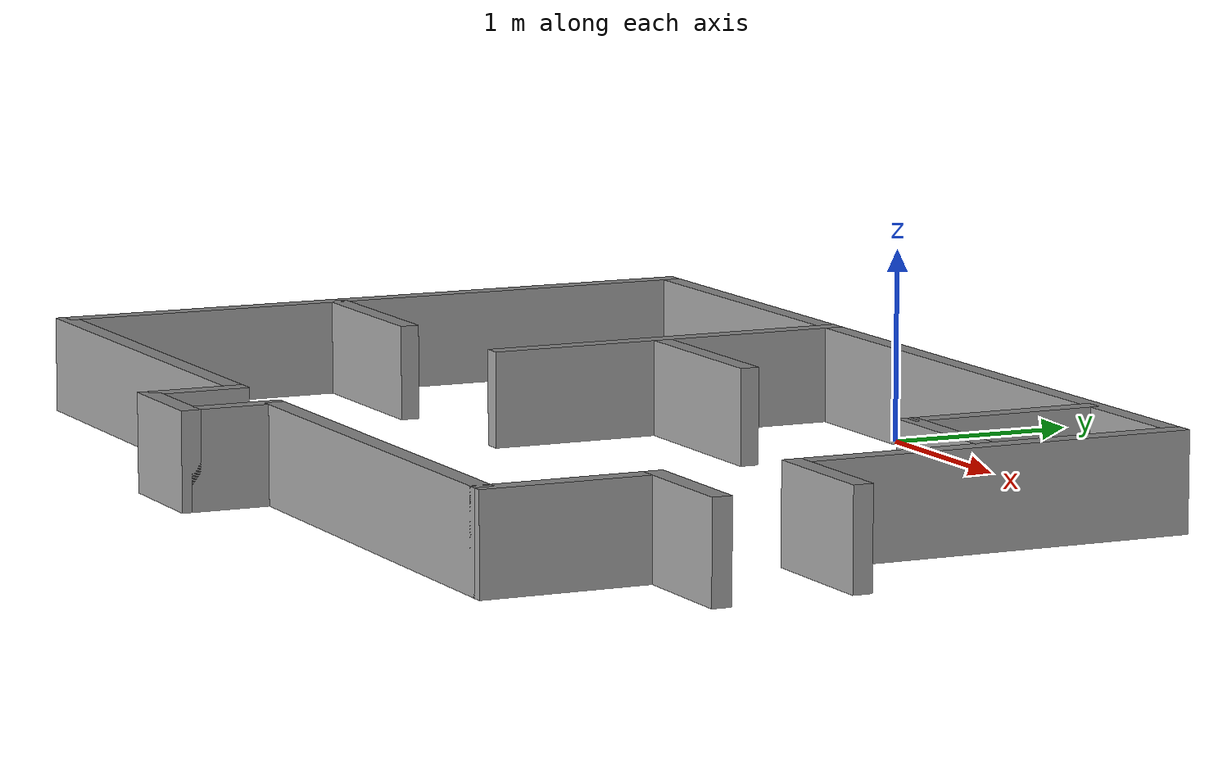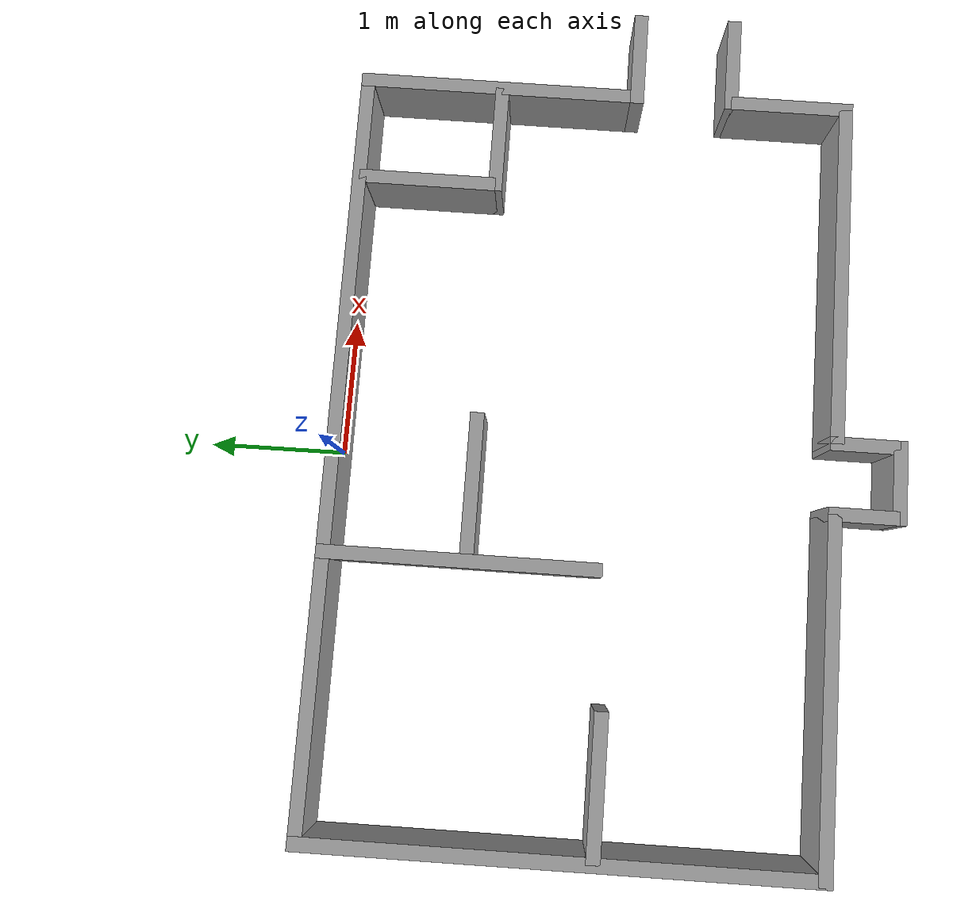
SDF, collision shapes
<?xml version='1.0'?>
<sdf version='1.7'>
  <model name='enclosed_maze'>
    <pose>0 0 0 0 0 0</pose>

    <!-- North Wall -->
        <link name='Wall_top_right'>
      <pose>2.75 -3.15 0.25 0 0 0</pose>
      <collision name='Wall_South_Left_Collision'>
        <geometry>
          <box>
            <size>0.1 0.9 0.5</size>
          </box>
        </geometry>
      </collision>
      <visual name='Wall_top_right_Visual'>
        <geometry>
          <box>
            <size>0.1 0.9 0.5</size>
          </box>
        </geometry>
        <material>
          <script>
            <uri>file://media/materials/scripts/gazebo.material</uri>
            <name>Gazebo/Grey</name>
          </script>
          <ambient>1 1 1 1</ambient>
        </material>
      </visual>
    </link>

    <link name='Wall_North_Right'>
      <pose>-2.2 -2 0.25 0 0 0</pose>
      <collision name='Wall_North_Right_Collision'>
        <geometry>
          <box>
            <size>1 0.1 0.5</size>
          </box>
        </geometry>
      </collision>
      <visual name='Wall_North_Right_Visual'>
        <geometry>
          <box>
            <size>1 0.1 0.5</size>
          </box>
        </geometry>
        <material>
          <script>
            <uri>file://media/materials/scripts/gazebo.material</uri>
            <name>Gazebo/Grey</name>
          </script>
          <ambient>1 1 1 1</ambient>
        </material>
      </visual>
    </link>

    <!-- South Wall -->
    <link name='Wall_South_Left'>
      <pose>-1.5 -3.55 0.25 0 0 0</pose>
      <collision name='Wall_South_Left_Collision'>
        <geometry>
          <box>
            <size>2.5 0.1 0.5</size>
          </box>
        </geometry>
      </collision>
      <visual name='Wall_South_Left_Visual'>
        <geometry>
          <box>
            <size>2.5 0.1 0.5</size>
          </box>
        </geometry>
        <material>
          <script>
            <uri>file://media/materials/scripts/gazebo.material</uri>
            <name>Gazebo/Grey</name>
          </script>
          <ambient>1 1 1 1</ambient>
        </material>
      </visual>
    </link>

    <link name='Wall_South_Right'>
      <pose>1.5 -3.55 0.25 0 0 0</pose>
      <collision name='Wall_South_Right_Collision'>
        <geometry>
          <box>
            <size>2.5 0.1 0.5</size>
          </box>
        </geometry>
      </collision>
      <visual name='Wall_South_Right_Visual'>
        <geometry>
          <box>
            <size>2.5 0.1 0.5</size>
          </box>
        </geometry>
        <material>
          <script>
            <uri>file://media/materials/scripts/gazebo.material</uri>
            <name>Gazebo/Grey</name>
          </script>
          <ambient>1 1 1 1</ambient>
        </material>
      </visual>
    </link>

    <!-- Entry and Exit Nooks -->
    <link name='Entry_Nook'>
      <pose>0 -4 0.25 0 0 0</pose>
      <collision name='Entry_Nook_Collision'>
        <geometry>
          <box>
            <size>0.6 0.1 0.5</size>
          </box>
        </geometry>
      </collision>
      <visual name='Entry_Nook_Visual'>
        <geometry>
          <box>
            <size>0.6 0.1 0.5</size>
          </box>
        </geometry>
        <material>
          <script>
            <uri>file://media/materials/scripts/gazebo.material</uri>
            <name>Gazebo/Grey</name>
          </script>
          <ambient>1 1 1 1</ambient>
        </material>
      </visual>
    </link>

    <!-- Entry and Exit Markers -->
    <link name='Exit_1'>
      <pose>3.05 -2.7 0.25 0 0 0</pose>
      <collision name='Exit_1_Collision'>
        <geometry>
          <box>
            <size>0.7 0.1 0.5</size>
          </box>
        </geometry>
      </collision>
      <visual name='Exit_1_Visual'>
        <geometry>
          <box>
            <size>0.7 0.1 0.5</size>
          </box>
        </geometry>
        <material>
          <script>
            <uri>file://media/materials/scripts/gazebo.material</uri>
            <name>Gazebo/Grey</name>
          </script>
          <ambient>1 1 1 1</ambient>
        </material>
      </visual>
    </link>

    <link name='Exit_2'>
      <pose>3.05 -2 0.25 0 0 0</pose>
      <collision name='Exit_2_Collision'>
        <geometry>
          <box>
            <size>0.7 0.1 0.5</size>
          </box>
        </geometry>
      </collision>
      <visual name='Exit_2_Visual'>
        <geometry>
          <box>
            <size>0.7 0.1 0.5</size>
          </box>
        </geometry>
        <material>
          <script>
            <uri>file://media/materials/scripts/gazebo.material</uri>
            <name>Gazebo/Grey</name>
          </script>
          <ambient>1 1 1 1</ambient>
        </material>
      </visual>
    </link>

    <link name='Entry_1'>
      <pose>0.25 -3.75 0.25 0 0 0</pose>
      <collision name='Entry_1_Collision'>
        <geometry>
          <box>
            <size>0.1 0.5 0.5</size>
          </box>
        </geometry>
      </collision>
      <visual name='Entry_1_Visual'>
        <geometry>
          <box>
            <size>0.1 0.5 0.5</size>
          </box>
        </geometry>
        <material>
          <script>
            <uri>file://media/materials/scripts/gazebo.material</uri>
            <name>Gazebo/Grey</name>
          </script>
          <ambient>1 1 1 1</ambient>
        </material>
      </visual>
    </link>

    <link name='Entry_2'>
      <pose>-0.25 -3.75 0.25 0 0 0</pose>
      <collision name='Entry_2_Collision'>
        <geometry>
          <box>
            <size>0.1 0.5 0.5</size>
          </box>
        </geometry>
      </collision>
      <visual name='Entry_2_Visual'>
        <geometry>
          <box>
            <size>0.1 0.5 0.5</size>
          </box>
        </geometry>
        <material>
          <script>
            <uri>file://media/materials/scripts/gazebo.material</uri>
            <name>Gazebo/Grey</name>
          </script>
          <ambient>1 1 1 1</ambient>
        </material>
      </visual>
    </link>

    <!-- West Wall -->
    <link name='Wall_West'>
      <pose>-2.7 -1.75 0.25 0 0 0</pose>
      <collision name='Wall_West_Collision'>
        <geometry>
          <box>
            <size>0.1 3.6 0.5</size>
          </box>
        </geometry>
      </collision>
      <visual name='Wall_West_Visual'>
        <geometry>
          <box>
            <size>0.1 3.6 0.5</size>
          </box>
        </geometry>
        <material>
          <script>
            <uri>file://media/materials/scripts/gazebo.material</uri>
            <name>Gazebo/Grey</name>
          </script>
          <ambient>1 1 1 1</ambient>
        </material>
      </visual>
    </link>

    <!-- East Wall -->
    <link name='Wall_East'>
      <pose>2.75 -0.95 0.25 0 0 0</pose>
      <collision name='Wall_East_Collision'>
        <geometry>
          <box>
            <size>0.1 2 0.5</size>
          </box>
        </geometry>
      </collision>
      <visual name='Wall_East_Visual'>
        <geometry>
          <box>
            <size>0.1 2 0.5</size>
          </box>
        </geometry>
        <material>
          <script>
            <uri>file://media/materials/scripts/gazebo.material</uri>
            <name>Gazebo/Grey</name>
          </script>
          <ambient>1 1 1 1</ambient>
        </material>
      </visual>
    </link>

    <!-- Inner Maze Walls -->
    <link name='Inner_Wall_5'>
      <pose>2 -0.5 0.25 0 0 0</pose>
      <collision name='Inner_Wall_5_Collision'>
        <geometry>
          <box>
            <size>0.1 1 0.5</size>
          </box>
        </geometry>
      </collision>
      <visual name='Inner_Wall_5_Visual'>
        <geometry>
          <box>
            <size>0.1 1 0.5</size>
          </box>
        </geometry>
        <material>
          <script>
            <uri>file://media/materials/scripts/gazebo.material</uri>
            <name>Gazebo/Grey</name>
          </script>
          <ambient>1 1 1 1</ambient>
        </material>
      </visual>
    </link>

    <link name='Inner_Wall_1'>
      <pose>2.35 -1 0.25 0 0 0</pose>
      <collision name='Inner_Wall_1_Collision'>
        <geometry>
          <box>
            <size>0.8 0.1 0.5</size>
          </box>
        </geometry>
      </collision>
      <visual name='Inner_Wall_1_Visual'>
        <geometry>
          <box>
            <size>0.8 0.1 0.5</size>
          </box>
        </geometry>
        <material>
          <script>
            <uri>file://media/materials/scripts/gazebo.material</uri>
            <name>Gazebo/Grey</name>
          </script>
          <ambient>1 1 1 1</ambient>
        </material>
      </visual>
    </link>

    <link name='Inner_Wall_2'>
      <pose>-0.2 -1 0.25 0 0 0</pose>
      <collision name='Inner_Wall_2_Collision'>
        <geometry>
          <box>
            <size>1 0.1 0.5</size>
          </box>
        </geometry>
      </collision>
      <visual name='Inner_Wall_2_Visual'>
        <geometry>
          <box>
            <size>1 0.1 0.5</size>
          </box>
        </geometry>
        <material>
          <script>
            <uri>file://media/materials/scripts/gazebo.material</uri>
            <name>Gazebo/Grey</name>
          </script>
          <ambient>1 1 1 1</ambient>
        </material>
      </visual>
    </link>

    <link name='Inner_Wall_3'>
      <pose>0 0 0.25 0 0 0</pose>
      <collision name='Inner_Wall_3_Collision'>
        <geometry>
          <box>
            <size>5.5 0.1 0.5</size>
          </box>
        </geometry>
      </collision>
      <visual name='Inner_Wall_3_Visual'>
        <geometry>
          <box>
            <size>5.5 0.1 0.5</size>
          </box>
        </geometry>
        <material>
          <script>
            <uri>file://media/materials/scripts/gazebo.material</uri>
            <name>Gazebo/Grey</name>
          </script>
          <ambient>1 1 1 1</ambient>
        </material>
      </visual>
    </link>

    <link name='Inner_Wall_6'>
      <pose>-0.75 -0.95 0.25 0 0 0</pose>
      <collision name='Inner_Wall_6_Collision'>
        <geometry>
          <box>
            <size>0.1 2 0.5</size>
          </box>
        </geometry>
      </collision>
      <visual name='Inner_Wall_6_Visual'>
        <geometry>
          <box>
            <size>0.1 2 0.5</size>
          </box>
        </geometry>
        <material>
          <script>
            <uri>file://media/materials/scripts/gazebo.material</uri>
            <name>Gazebo/Grey</name>
          </script>
          <ambient>1 1 1 1</ambient>
        </material>
      </visual>
    </link>

    <link name='Green_Block'>
      <pose> 3.3 -2.35 0.25 0 0 0</pose> <!-- Positioned flush with the floor (0.1m to account for half the block height) -->

      <!-- Visual representation of the green block -->
      <visual name='Green_Block_Visual'>
        <geometry>
          <box>
            <size>0.2 0.6 0.5</size>
          </box>
        </geometry>
        <material>
          <script>
            <uri>file://media/materials/scripts/gazebo.material</uri>
            <name>Gazebo/Green</name>
          </script>
          <ambient>0 1 0 1</ambient> <!-- Green color -->
        </material>
      </visual>
    </link>

    <!-- TurtleBot Starting Position -->
    <link name='TurtleBot'>
      <visual name='TurtleBot_Visual'>
        <geometry>
          <mesh>
            <uri>model://turtlebot3_burger</uri>
          </mesh>
        </geometry>
      </visual>
      <pose>0 -6.5 0.1 0 0 0</pose>
    </link>

    <static>true</static>
  </model>
</sdf>
